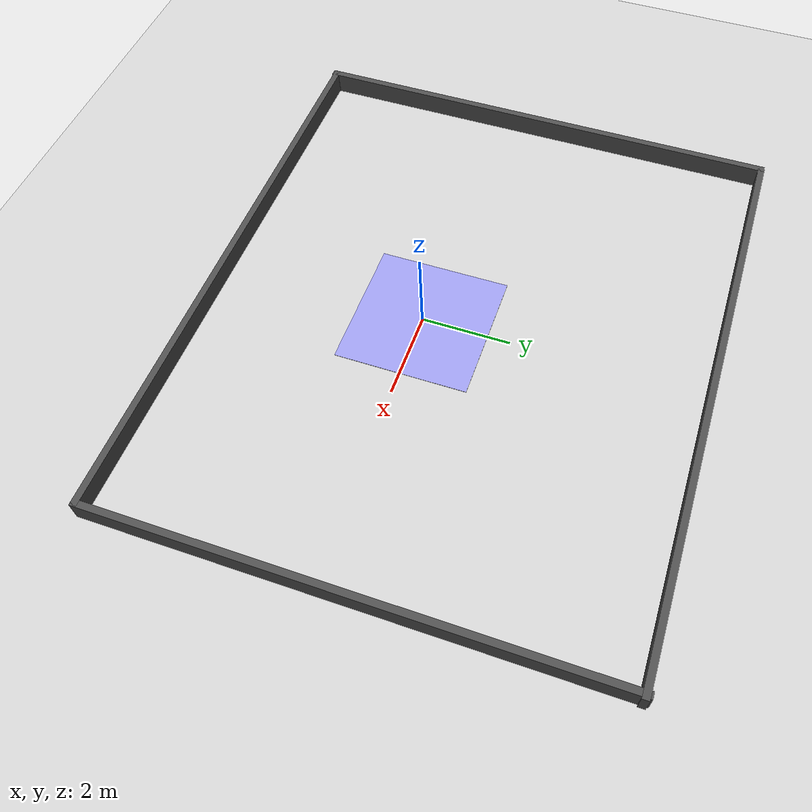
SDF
<?xml version="1.0"?>
  <sdf version="1.4">
    <world name="default">
      <!-- A global light source -->
      <include>
        <uri>model://sun</uri>
      </include>
      <!-- A ground plane -->
      <include>
        <uri>model://ground_plane</uri>
      </include>

      <include>
        <uri>model://chao</uri>
      </include>

     <include>
        <uri>model://parede</uri>
        <name>parede1</name>
        <pose>0.0 0.85 0.0 0 0 0</pose>
      </include>

    </world>
  </sdf>

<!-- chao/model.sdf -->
<sdf version='1.7'>
  <model name='chao'>
    <link name='link'>
      <inertial>
        <mass>1</mass>
        <inertia>
          <ixx>0.166667</ixx>
          <ixy>0</ixy>
          <ixz>0</ixz>
          <iyy>0.166667</iyy>
          <iyz>0</iyz>
          <izz>0.166667</izz>
        </inertia>
      </inertial>
      <self_collide>0</self_collide>
      <enable_wind>0</enable_wind>
      <kinematic>0</kinematic>
      <pose>0 0 0 0 -0 0</pose>
      <gravity>1</gravity>
      <visual name='visual'>
        <geometry>
          <box>
            <size>3 3 0.01</size>
          </box>
        </geometry>
        <material>
          <ambient>0.5 0.5 0.8 1</ambient> <!-- Azul claro -->
          <diffuse>0.6 0.6 0.9 1</diffuse> <!-- Azul brilhante -->
          <specular>0.3 0.3 0.5 1</specular> <!-- Reflexo suave -->
          <emissive>0 0 0 1</emissive>
        </material>
        <pose>0 0 0 0 -0 0</pose>
        <transparency>0</transparency>
        <cast_shadows>1</cast_shadows>
      </visual>
      <collision name='collision'>
        <laser_retro>0</laser_retro>
        <max_contacts>10</max_contacts>
        <pose>0 0 0 0 -0 0</pose>
        <geometry>
          <box>
            <size>3 3 0.01</size>
          </box>
        </geometry>
        <surface>
          <friction>
            <ode>
              <mu>1</mu>
              <mu2>1</mu2>
              <fdir1>0 0 0</fdir1>
              <slip1>0</slip1>
              <slip2>0</slip2>
            </ode>
            <torsional>
              <coefficient>1</coefficient>
              <patch_radius>0</patch_radius>
              <surface_radius>0</surface_radius>
              <use_patch_radius>1</use_patch_radius>
              <ode>
                <slip>0</slip>
              </ode>
            </torsional>
          </friction>
          <bounce>
            <restitution_coefficient>0</restitution_coefficient>
            <threshold>1e+06</threshold>
          </bounce>
          <contact>
            <collide_without_contact>0</collide_without_contact>
            <collide_without_contact_bitmask>1</collide_without_contact_bitmask>
            <collide_bitmask>1</collide_bitmask>
            <ode>
              <soft_cfm>0</soft_cfm>
              <soft_erp>0.2</soft_erp>
              <kp>1e+13</kp>
              <kd>1</kd>
              <max_vel>0.01</max_vel>
              <min_depth>0</min_depth>
            </ode>
            <bullet>
              <split_impulse>1</split_impulse>
              <split_impulse_penetration_threshold>-0.01</split_impulse_penetration_threshold>
              <soft_cfm>0</soft_cfm>
              <soft_erp>0.2</soft_erp>
              <kp>1e+13</kp>
              <kd>1</kd>
            </bullet>
          </contact>
        </surface>
      </collision>
    </link>
    <static>1</static>
    <allow_auto_disable>1</allow_auto_disable>
  </model>
</sdf>

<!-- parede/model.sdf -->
<sdf version='1.6'>
  <model name='parede'>
    <link name='Wall_0'>
      <pose frame=''>-0.004951 -5.56026 0 0 -0 0</pose>
      <self_collide>0</self_collide>
      <enable_wind>0</enable_wind>
      <kinematic>0</kinematic>
      <inertial>
        <inertia>
          <ixx>0</ixx>
          <ixy>0</ixy>
          <ixz>0</ixz>
          <iyy>0</iyy>
          <iyz>0</iyz>
          <izz>0</izz>
        </inertia>
        <mass>0</mass>
        <pose frame=''>0 0 0 0 -0 0</pose>
      </inertial>
      <gravity>1</gravity>
      <visual name='Wall_0_Visual'>
        <pose frame=''>0 0 0 0 -0 0</pose>
        <geometry>
          <box>
            <size>13.1161 0.15 1.0</size>
          </box>
        </geometry>
        <material>
          <script>
            <uri>file://media/materials/scripts/gazebo.material</uri>
            <name>Gazebo/DarkGrey</name>
          </script>
          <ambient>0.5 0.5 0.5 1</ambient>
        </material>
        <meta>
          <layer>0</layer>
        </meta>
        <transparency>0</transparency>
        <cast_shadows>1</cast_shadows>
      </visual>
      <collision name='Wall_0_Collision'>
        <laser_retro>0</laser_retro>
        <max_contacts>10</max_contacts>
        <pose frame=''>0 0 0 0 -0 0</pose>
        <geometry>
          <box>
            <size>13.1161 0.15 1.0</size>
          </box>
        </geometry>
        <surface>
          <friction>
            <ode>
              <mu>1</mu>
              <mu2>1</mu2>
              <fdir1>0 0 0</fdir1>
              <slip1>0</slip1>
              <slip2>0</slip2>
            </ode>
            <torsional>
              <coefficient>1</coefficient>
              <patch_radius>0</patch_radius>
              <surface_radius>0</surface_radius>
              <use_patch_radius>1</use_patch_radius>
              <ode>
                <slip>0</slip>
              </ode>
            </torsional>
          </friction>
          <bounce>
            <restitution_coefficient>0</restitution_coefficient>
            <threshold>1e+06</threshold>
          </bounce>
          <contact>
            <collide_without_contact>0</collide_without_contact>
            <collide_without_contact_bitmask>1</collide_without_contact_bitmask>
            <collide_bitmask>1</collide_bitmask>
            <ode>
              <soft_cfm>0</soft_cfm>
              <soft_erp>0.2</soft_erp>
              <kp>1e+13</kp>
              <kd>1</kd>
              <max_vel>0.01</max_vel>
              <min_depth>0</min_depth>
            </ode>
            <bullet>
              <split_impulse>1</split_impulse>
              <split_impulse_penetration_threshold>-0.01</split_impulse_penetration_threshold>
              <soft_cfm>0</soft_cfm>
              <soft_erp>0.2</soft_erp>
              <kp>1e+13</kp>
              <kd>1</kd>
            </bullet>
          </contact>
        </surface>
      </collision>
    </link>
    <link name='Wall_1'>
      <pose frame=''>0.061052 5.53717 0 0 -0 3.14</pose>
      <self_collide>0</self_collide>
      <enable_wind>0</enable_wind>
      <kinematic>0</kinematic>
      <inertial>
        <inertia>
          <ixx>0</ixx>
          <ixy>0</ixy>
          <ixz>0</ixz>
          <iyy>0</iyy>
          <iyz>0</iyz>
          <izz>0</izz>
        </inertia>
        <mass>0</mass>
        <pose frame=''>0 0 0 0 -0 0</pose>
      </inertial>
      <gravity>1</gravity>
      <visual name='Wall_1_Visual'>
        <pose frame=''>0 0 0 0 -0 0</pose>
        <geometry>
          <box>
            <size>13.1161 0.15 1.0</size>
          </box>
        </geometry>
        <material>
          <script>
            <uri>file://media/materials/scripts/gazebo.material</uri>
            <name>Gazebo/DarkGrey</name>
          </script>
          <ambient>0.5 0.5 0.5 1</ambient>
        </material>
        <meta>
          <layer>0</layer>
        </meta>
        <transparency>0</transparency>
        <cast_shadows>1</cast_shadows>
      </visual>
      <collision name='Wall_1_Collision'>
        <laser_retro>0</laser_retro>
        <max_contacts>10</max_contacts>
        <pose frame=''>0 0 0 0 -0 0</pose>
        <geometry>
          <box>
            <size>13.1161 0.15 1.0</size>
          </box>
        </geometry>
        <surface>
          <friction>
            <ode>
              <mu>1</mu>
              <mu2>1</mu2>
              <fdir1>0 0 0</fdir1>
              <slip1>0</slip1>
              <slip2>0</slip2>
            </ode>
            <torsional>
              <coefficient>1</coefficient>
              <patch_radius>0</patch_radius>
              <surface_radius>0</surface_radius>
              <use_patch_radius>1</use_patch_radius>
              <ode>
                <slip>0</slip>
              </ode>
            </torsional>
          </friction>
          <bounce>
            <restitution_coefficient>0</restitution_coefficient>
            <threshold>1e+06</threshold>
          </bounce>
          <contact>
            <collide_without_contact>0</collide_without_contact>
            <collide_without_contact_bitmask>1</collide_without_contact_bitmask>
            <collide_bitmask>1</collide_bitmask>
            <ode>
              <soft_cfm>0</soft_cfm>
              <soft_erp>0.2</soft_erp>
              <kp>1e+13</kp>
              <kd>1</kd>
              <max_vel>0.01</max_vel>
              <min_depth>0</min_depth>
            </ode>
            <bullet>
              <split_impulse>1</split_impulse>
              <split_impulse_penetration_threshold>-0.01</split_impulse_penetration_threshold>
              <soft_cfm>0</soft_cfm>
              <soft_erp>0.2</soft_erp>
              <kp>1e+13</kp>
              <kd>1</kd>
            </bullet>
          </contact>
        </surface>
      </collision>
    </link>
    <link name='Wall_2'>
      <pose frame=''>6.5 0.005899 0 0 -0 1.57</pose>
      <self_collide>0</self_collide>
      <enable_wind>0</enable_wind>
      <kinematic>0</kinematic>
      <inertial>
        <inertia>
          <ixx>0</ixx>
          <ixy>0</ixy>
          <ixz>0</ixz>
          <iyy>0</iyy>
          <iyz>0</iyz>
          <izz>0</izz>
        </inertia>
        <mass>0</mass>
        <pose frame=''>0 0 0 0 -0 0</pose>
      </inertial>
      <gravity>1</gravity>
      <visual name='Wall_2_Visual'>
        <pose frame=''>0 0 0 0 -0 0</pose>
        <geometry>
          <box>
            <size>11.2703 0.15 1.0</size>
          </box>
        </geometry>
        <material>
          <script>
            <uri>file://media/materials/scripts/gazebo.material</uri>
            <name>Gazebo/DarkGrey</name>
          </script>
          <ambient>0.5 0.5 0.5 1</ambient>
        </material>
        <meta>
          <layer>0</layer>
        </meta>
        <transparency>0</transparency>
        <cast_shadows>1</cast_shadows>
      </visual>
      <collision name='Wall_2_Collision'>
        <laser_retro>0</laser_retro>
        <max_contacts>10</max_contacts>
        <pose frame=''>0 0 0 0 -0 0</pose>
        <geometry>
          <box>
            <size>11.2703 0.15 1.0</size>
          </box>
        </geometry>
        <surface>
          <friction>
            <ode>
              <mu>1</mu>
              <mu2>1</mu2>
              <fdir1>0 0 0</fdir1>
              <slip1>0</slip1>
              <slip2>0</slip2>
            </ode>
            <torsional>
              <coefficient>1</coefficient>
              <patch_radius>0</patch_radius>
              <surface_radius>0</surface_radius>
              <use_patch_radius>1</use_patch_radius>
              <ode>
                <slip>0</slip>
              </ode>
            </torsional>
          </friction>
          <bounce>
            <restitution_coefficient>0</restitution_coefficient>
            <threshold>1e+06</threshold>
          </bounce>
          <contact>
            <collide_without_contact>0</collide_without_contact>
            <collide_without_contact_bitmask>1</collide_without_contact_bitmask>
            <collide_bitmask>1</collide_bitmask>
            <ode>
              <soft_cfm>0</soft_cfm>
              <soft_erp>0.2</soft_erp>
              <kp>1e+13</kp>
              <kd>1</kd>
              <max_vel>0.01</max_vel>
              <min_depth>0</min_depth>
            </ode>
            <bullet>
              <split_impulse>1</split_impulse>
              <split_impulse_penetration_threshold>-0.01</split_impulse_penetration_threshold>
              <soft_cfm>0</soft_cfm>
              <soft_erp>0.2</soft_erp>
              <kp>1e+13</kp>
              <kd>1</kd>
            </bullet>
          </contact>
        </surface>
      </collision>
    </link>
    <link name='Wall_3'>
      <pose frame=''>-6.49998 -0.025026 0 0 0 -1.57</pose>
      <self_collide>0</self_collide>
      <enable_wind>0</enable_wind>
      <kinematic>0</kinematic>
      <inertial>
        <inertia>
          <ixx>0</ixx>
          <ixy>0</ixy>
          <ixz>0</ixz>
          <iyy>0</iyy>
          <iyz>0</iyz>
          <izz>0</izz>
        </inertia>
        <mass>0</mass>
        <pose frame=''>0 0 0 0 -0 0</pose>
      </inertial>
      <gravity>1</gravity>
      <visual name='Wall_3_Visual'>
        <pose frame=''>0 0 0 0 -0 0</pose>
        <geometry>
          <box>
            <size>11.2703 0.15 1.0</size>
          </box>
        </geometry>
        <material>
          <script>
            <uri>file://media/materials/scripts/gazebo.material</uri>
            <name>Gazebo/DarkGrey</name>
          </script>
          <ambient>0.5 0.5 0.5 1</ambient>
        </material>
        <meta>
          <layer>0</layer>
        </meta>
        <transparency>0</transparency>
        <cast_shadows>1</cast_shadows>
      </visual>
      <collision name='Wall_3_Collision'>
        <laser_retro>0</laser_retro>
        <max_contacts>10</max_contacts>
        <pose frame=''>0 0 0 0 -0 0</pose>
        <geometry>
          <box>
            <size>11.2703 0.15 1.0</size>
          </box>
        </geometry>
        <surface>
          <friction>
            <ode>
              <mu>1</mu>
              <mu2>1</mu2>
              <fdir1>0 0 0</fdir1>
              <slip1>0</slip1>
              <slip2>0</slip2>
            </ode>
            <torsional>
              <coefficient>1</coefficient>
              <patch_radius>0</patch_radius>
              <surface_radius>0</surface_radius>
              <use_patch_radius>1</use_patch_radius>
              <ode>
                <slip>0</slip>
              </ode>
            </torsional>
          </friction>
          <bounce>
            <restitution_coefficient>0</restitution_coefficient>
            <threshold>1e+06</threshold>
          </bounce>
          <contact>
            <collide_without_contact>0</collide_without_contact>
            <collide_without_contact_bitmask>1</collide_without_contact_bitmask>
            <collide_bitmask>1</collide_bitmask>
            <ode>
              <soft_cfm>0</soft_cfm>
              <soft_erp>0.2</soft_erp>
              <kp>1e+13</kp>
              <kd>1</kd>
              <max_vel>0.01</max_vel>
              <min_depth>0</min_depth>
            </ode>
            <bullet>
              <split_impulse>1</split_impulse>
              <split_impulse_penetration_threshold>-0.01</split_impulse_penetration_threshold>
              <soft_cfm>0</soft_cfm>
              <soft_erp>0.2</soft_erp>
              <kp>1e+13</kp>
              <kd>1</kd>
            </bullet>
          </contact>
        </surface>
      </collision>
    </link>
    <static>1</static>
    <allow_auto_disable>1</allow_auto_disable>
  </model>
</sdf>
